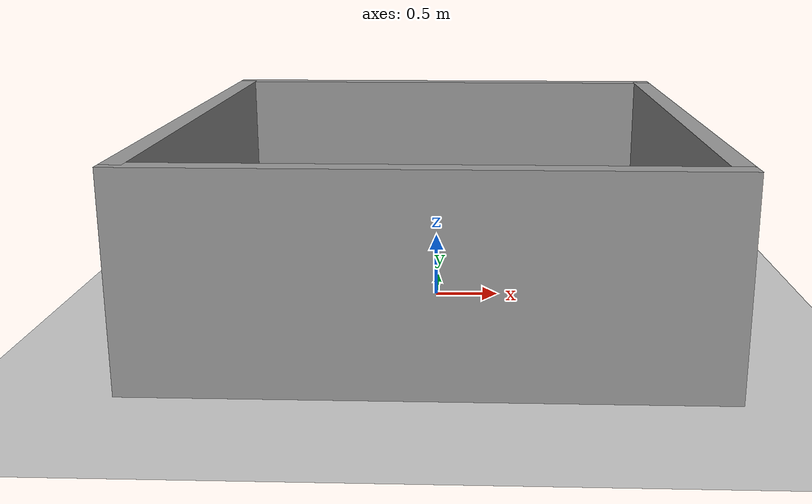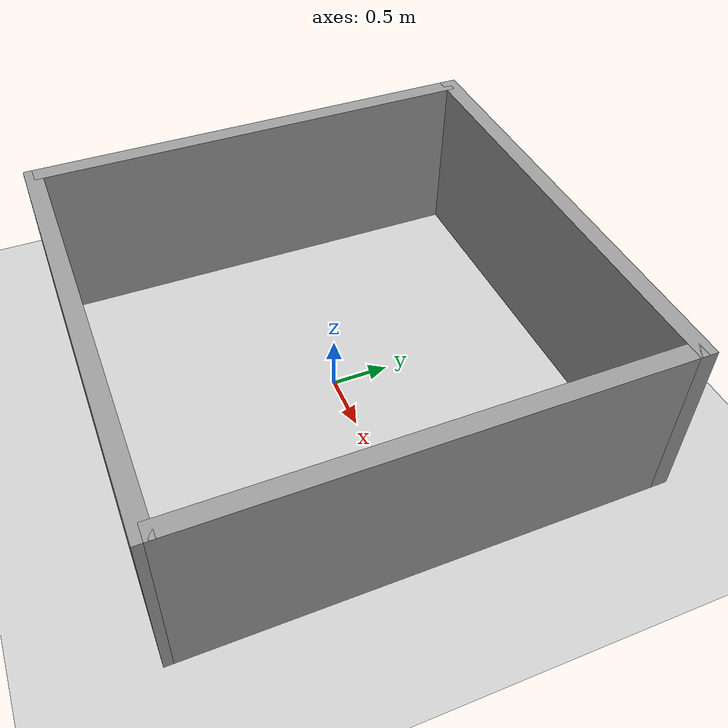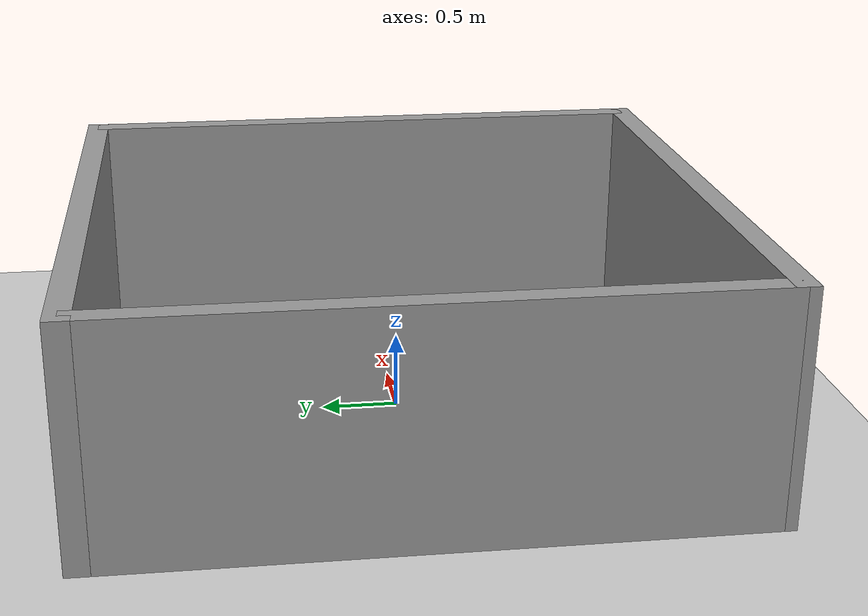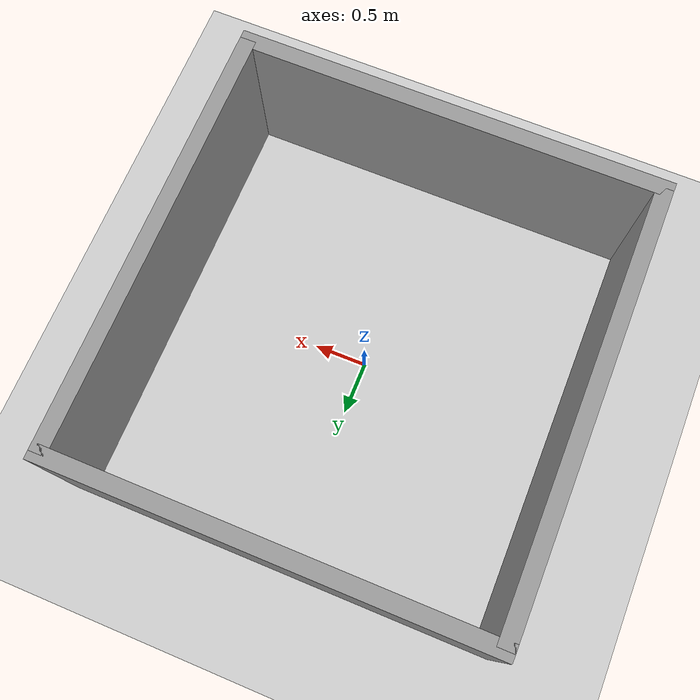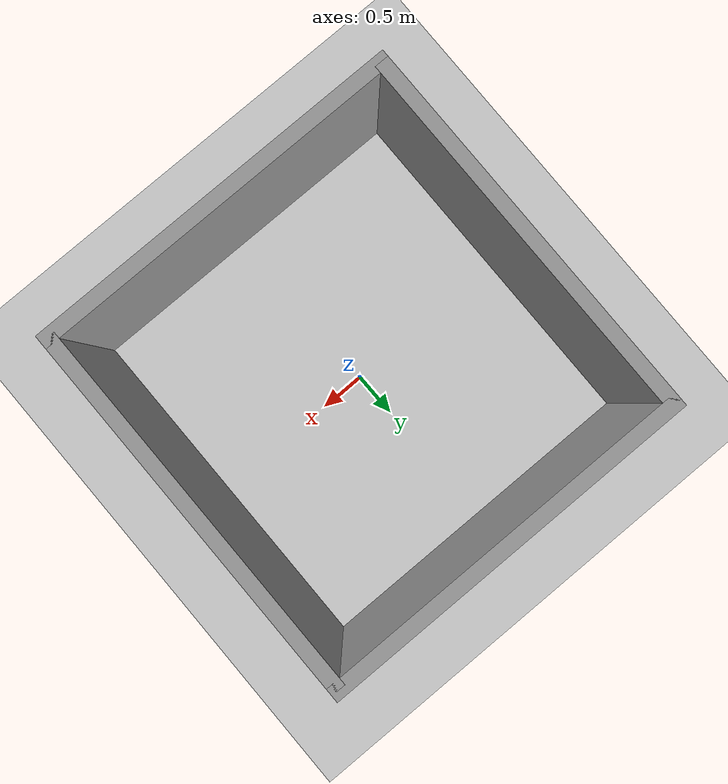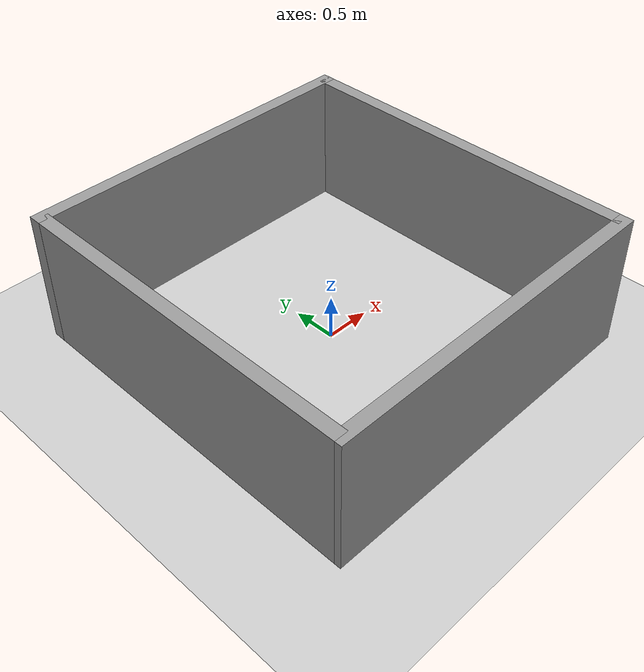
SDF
<sdf version='1.7'>
  <world name='empty_square_enclosure'>
    <!-- A global light source -->
    <include>
      <uri>model://sun</uri>
    </include>

    <!-- A ground plane -->
    <include>
      <uri>model://ground_plane</uri>
    </include>

    <!-- Load model -->
    <include>
      <uri>model://square_enclosure</uri>
    </include>

    <physics type="ode">
      <real_time_update_rate>0</real_time_update_rate>
      <!-- Product of real time update rate and max step size represents the
      target real time factor, or ratio of simulation time to real-time. -->
      <ode>
        <solver>
          <type>quick</type>
          <iters>150</iters>
          <precon_iters>0</precon_iters>
          <sor>1.400000</sor>
          <use_dynamic_moi_rescaling>1</use_dynamic_moi_rescaling>
          <!-- https://classic.gazebosim.org/tutorials?tut=parallel -->
          <thread_position_correction>False</thread_position_correction>
          <island_threads>0</island_threads>
        </solver>
        <constraints>
          <cfm>0.00001</cfm>
          <erp>0.2</erp>
          <contact_max_correcting_vel>2000.000000</contact_max_correcting_vel>
          <contact_surface_layer>0.01000</contact_surface_layer>
        </constraints>
      </ode>
    </physics>

    <scene>
      <ambient>0.4 0.4 0.4 1</ambient>
      <background>0.7 0.7 0.7 1</background>
      <!-- Modified to reduce computation effort if using CPU for rendering, default : True -->
      <shadows>False</shadows>
    </scene>

    <gui fullscreen='0'>
      <camera name='user_camera'>
        <pose>0.0 0.0 17.0 0 1.5708 0</pose>
        <view_controller>orbit</view_controller>
      </camera>
    </gui>
  </world>
</sdf>

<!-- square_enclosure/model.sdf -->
<sdf version='1.7'>
  <model name='square_enclosure'>
    <pose>0 0 0 0 -0 0</pose>
    <link name='Wall_0'>
      <collision name='Wall_0_Collision'>
        <geometry>
          <box>
            <size>4 0.15 1.5</size>
          </box>
        </geometry>
        <pose>0 0 0.75 0 -0 0</pose>
      </collision>
      <visual name='Wall_0_Visual'>
        <pose>0 0 0.75 0 -0 0</pose>
        <geometry>
          <box>
            <size>4 0.15 1.5</size>
          </box>
        </geometry>
        <material>
          <script>
            <uri>file://media/materials/scripts/gazebo.material</uri>
            <name>Gazebo/Grey</name>
          </script>
          <ambient>1 1 1 1</ambient>
        </material>
        <meta>
          <layer>0</layer>
        </meta>
      </visual>
      <pose>-1.925 0 0 0 -0 -1.5708</pose>
    </link>
    <link name='Wall_1'>
      <collision name='Wall_1_Collision'>
        <geometry>
          <box>
            <size>4 0.15 1.5</size>
          </box>
        </geometry>
        <pose>0 0 0.75 0 -0 0</pose>
      </collision>
      <visual name='Wall_1_Visual'>
        <pose>0 0 0.75 0 -0 0</pose>
        <geometry>
          <box>
            <size>4 0.15 1.5</size>
          </box>
        </geometry>
        <material>
          <script>
            <uri>file://media/materials/scripts/gazebo.material</uri>
            <name>Gazebo/Grey</name>
          </script>
          <ambient>1 1 1 1</ambient>
        </material>
        <meta>
          <layer>0</layer>
        </meta>
      </visual>
      <pose>0 -2 0 0 -0 0</pose>
    </link>
    <link name='Wall_2'>
      <collision name='Wall_2_Collision'>
        <geometry>
          <box>
            <size>4 0.15 1.5</size>
          </box>
        </geometry>
        <pose>0 0 0.75 0 -0 0</pose>
      </collision>
      <visual name='Wall_2_Visual'>
        <pose>0 0 0.75 0 -0 0</pose>
        <geometry>
          <box>
            <size>4 0.15 1.5</size>
          </box>
        </geometry>
        <material>
          <script>
            <uri>file://media/materials/scripts/gazebo.material</uri>
            <name>Gazebo/Grey</name>
          </script>
          <ambient>1 1 1 1</ambient>
        </material>
        <meta>
          <layer>0</layer>
        </meta>
      </visual>
      <pose>1.925 0 0 0 -0 1.5708</pose>
    </link>
    <link name='Wall_3'>
      <collision name='Wall_3_Collision'>
        <geometry>
          <box>
            <size>4 0.15 1.5</size>
          </box>
        </geometry>
        <pose>0 0 0.75 0 -0 0</pose>
      </collision>
      <visual name='Wall_3_Visual'>
        <pose>0 0 0.75 0 -0 0</pose>
        <geometry>
          <box>
            <size>4 0.15 1.5</size>
          </box>
        </geometry>
        <material>
          <script>
            <uri>file://media/materials/scripts/gazebo.material</uri>
            <name>Gazebo/Grey</name>
          </script>
          <ambient>1 1 1 1</ambient>
        </material>
        <meta>
          <layer>0</layer>
        </meta>
      </visual>
      <pose>0 2 0 0 -0 3.14159</pose>
    </link>
    <static>1</static>
  </model>
</sdf>
